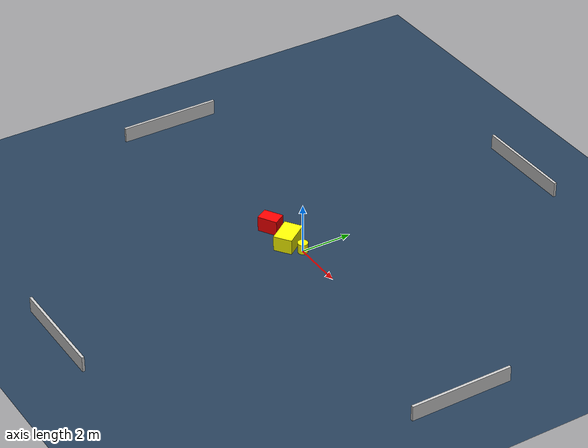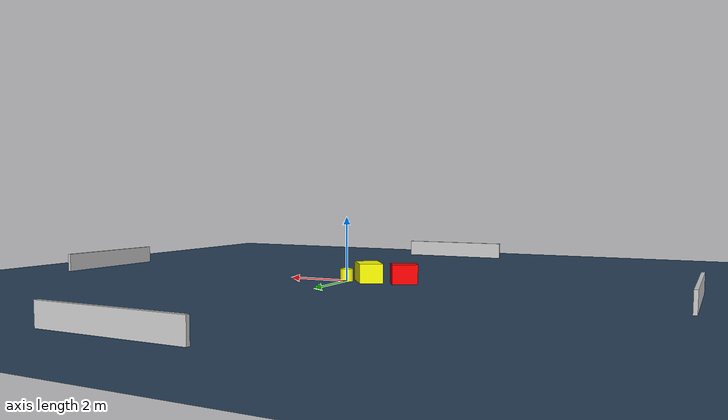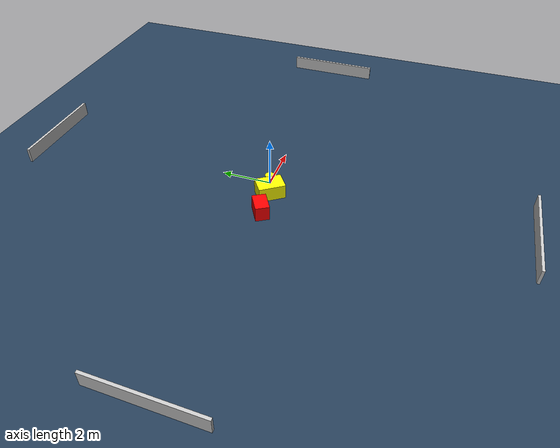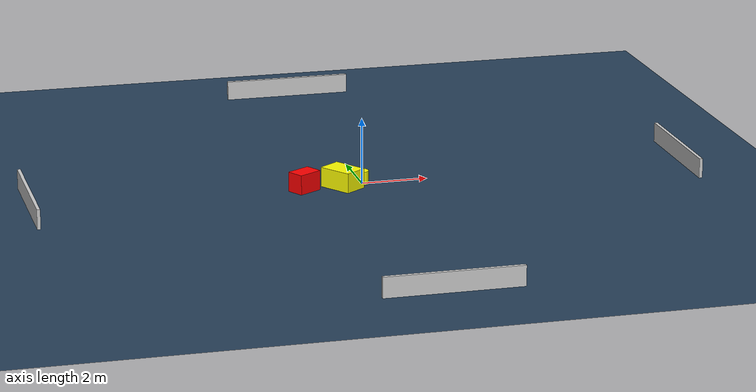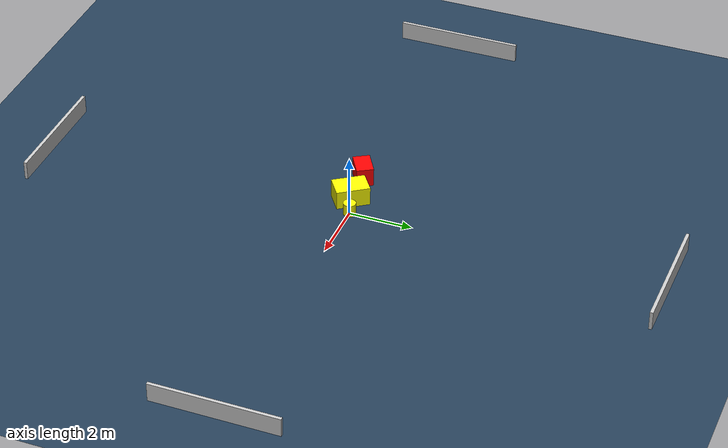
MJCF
<?xml version="1.0" ?>
<mujoco model="generated_environment">
  <option timestep="0.01" integrator="RK4" cone="elliptic"/>
  <default>
    <geom density="1"/>
  </default>
  <asset>
    <texture builtin="gradient" height="3072" name="skybox" rgb1="0.3 0.5 0.7" rgb2="0 0 0" type="skybox" width="512"/>
    <texture builtin="checker" height="300" name="groundplane" rgb1="0.2 0.3 0.4" rgb2="0.1 0.2 0.3" type="2d" width="300"/>
    <material name="groundplane" reflectance="0.2" texrepeat="5 5" texture="groundplane"/>
  </asset>
  <worldbody>
    <light dir="0 0 -1" directional="true" pos="0 0 1.5"/>
    <geom condim="3" friction="0.5 0.005 0.001" material="groundplane" name="floor" pos="0 0 0" size="0 0 0.05" type="plane"/>
    <body name="walls">
      <geom name="wall_1" condim="4" pos="-10.0 0.0 0.3" rgba="0.800000011920929 0.800000011920929 0.800000011920929 1.0" size="0.05 2.0 0.3" type="box"/>
      <geom name="wall_2" condim="4" pos="10.0 0.0 0.3" rgba="0.800000011920929 0.800000011920929 0.800000011920929 1.0" size="0.05 2.0 0.3" type="box"/>
      <geom name="wall_3" condim="4" pos="0.0 -10.0 0.3" rgba="0.800000011920929 0.800000011920929 0.800000011920929 1.0" size="2.0 0.05 0.3" type="box"/>
      <geom name="wall_4" condim="4" pos="0.0 10.0 0.3" rgba="0.800000011920929 0.800000011920929 0.800000011920929 1.0" size="2.0 0.05 0.3" type="box"/>
    </body>
    <body name="robot">
      <joint name="joint_x" type="slide" pos="0 0 0" axis="1 0 0"/>
      <joint name="joint_y" type="slide" pos="0 0 0" axis="0 1 0"/>
      <geom name="robot" type="cylinder" pos="0.0 0.0 0.2" size="0.2 0.2 0.0" mass="5.0" friction="1.0 0.005 0.0001" condim="4" rgba="1.0 1.0 0.0 1.0"/>
    </body>
    <body name="obstacle_1_movable">
      <geom name="obstacle_1_movable" condim="4" pos="-0.6582335180775339 -0.2249197980430364 0.3" euler="0 0 215.25568026529984" friction="0.0 0.005 0.001" rgba="1.0 1.0 0.0 1.0" size="0.3627712953511023 0.5303853510656666 0.3" type="box" mass="0.1"/>
      <joint type="free"/>
    </body>
    <body name="obstacle_2_static">
      <geom name="obstacle_2_static" condim="4" pos="-1.8290432051777692 -0.27244571020862307 0.3" euler="0 0 210.79113358565277" friction="0.0 0.005 0.001" rgba="1.0 0.0 0.0 1.0" size="0.389231319445982 0.2705069366077739 0.3" type="box"/>
    </body>
  </worldbody>
  <actuator>
    <motor name="actuator_x" joint="joint_x" gear="1" ctrlrange="-1 1"/>
    <motor name="actuator_y" joint="joint_y" gear="1" ctrlrange="-1 1"/>
  </actuator>
</mujoco>
